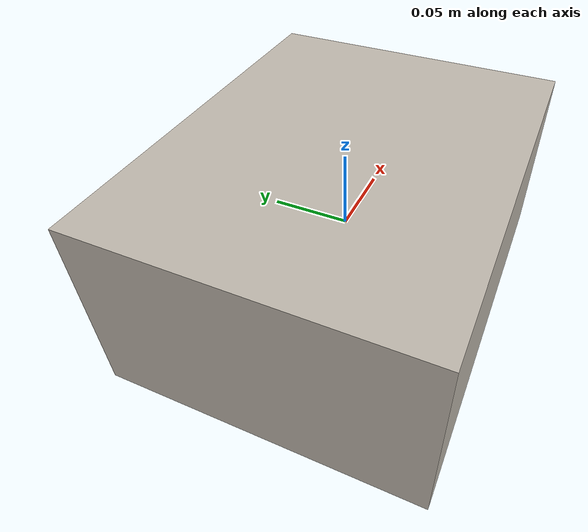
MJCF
<?xml version="1.0" encoding="utf-8"?>
<mujoco model="box_light">
  <compiler angle="radian" meshdir="assets" texturedir="assets" autolimits="true"/>
  <asset>
    <texture type="cube" name="box" file="cardboard_procedural.png"/>
    <material name="box" specular="0.2" shininess="0.2" texture="box" texuniform="true" texrepeat="4 4"/>
  </asset>
  <default>
    <default class="box">
      <default class="visual">
        <geom type="mesh" mass="3" contype="0" conaffinity="0" group="2"/>
      </default>
      <default class="collision">
        <geom type="mesh" mass="0" group="3" solimp="0.95 0.98 0.001" solref="0.004 1" friction="1.5"/>
      </default>
    </default>
  </default>
  <worldbody>
    <body name="box" childclass="box">
      <geom name="visual" size="0.125 0.1 0.06" type="box" class="visual" material="box"/>
      <geom name="collider" size="0.125 0.1 0.06" type="box" class="collision"/>
    </body>
  </worldbody>
</mujoco>
